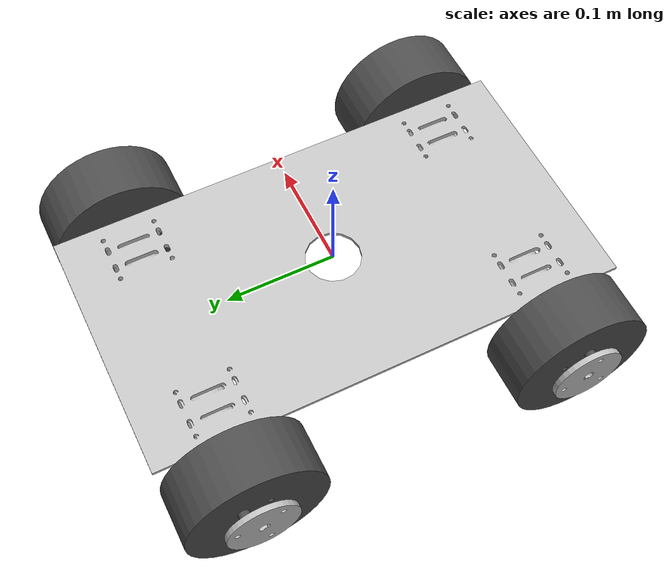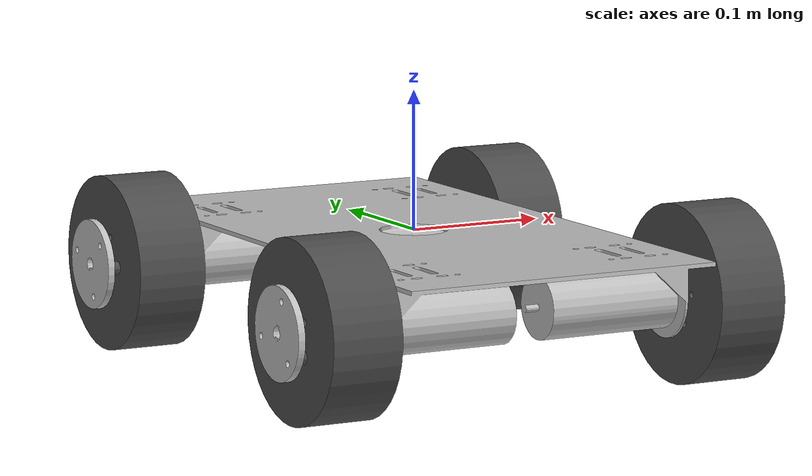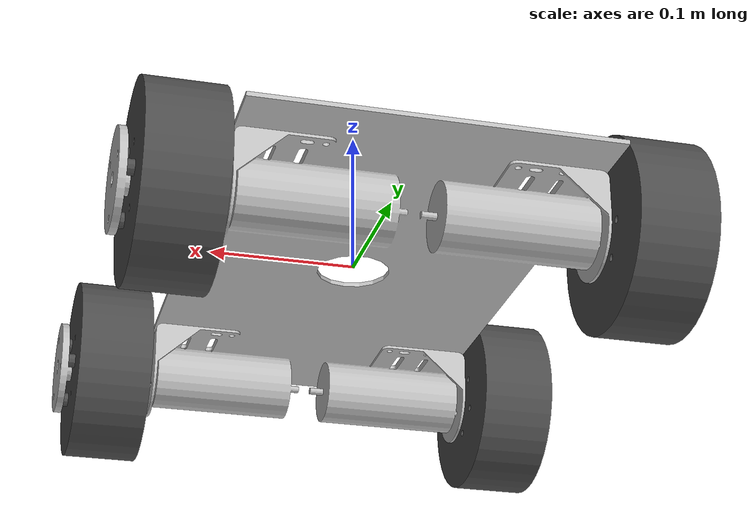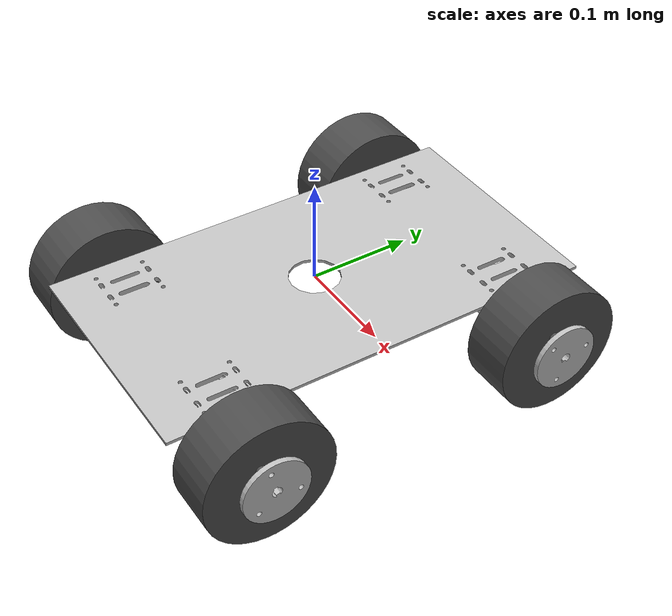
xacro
<?xml version="1.0" encoding="utf-8"?>
<robot name="msr" xmlns:xacro="http://ros.org/wiki/xacro">

  <xacro:include filename="$(find msr)/urdf/msr.gazebo.xacro"/>

  <link name="base_link">
    <inertial>
      <origin
        xyz="-8.73669186858481E-18 1.44637171351933E-06 -0.0237637406117088"
        rpy="0 0 0" />
      <mass
        value="1.09205855733332" />
      <inertia
        ixx="0.00476506432987394"
        ixy="5.02153093549206E-07"
        ixz="-6.45628599175951E-21"
        iyy="0.00207697842824223"
        iyz="2.75344355502338E-19"
        izz="0.00661717269474077" />
    </inertial>
    <visual>
      <origin
        xyz="0 0 0"
        rpy="0 0 0" />
      <geometry>
        <mesh
          filename="package://msr/meshes/base_link.STL" />
      </geometry>
      <material
        name="">
        <color
          rgba="0.752941176470588 0.752941176470588 0.752941176470588 1" />
      </material>
    </visual>
    <collision>
      <origin
        xyz="0 0 0"
        rpy="0 0 0" />
      <geometry>
        <mesh
          filename="package://msr/meshes/base_link.STL" />
      </geometry>
    </collision>
  </link>

  <link name="front_left">
    <inertial>
      <origin
        xyz="2.42861286636753E-17 2.77555756156289E-17 -0.0255525062351154"
        rpy="0 0 0" />
      <mass
        value="0.628243917892436" />
      <inertia
        ixx="0.000786474602916463"
        ixy="5.42101086242752E-20"
        ixz="2.164642910193E-19"
        iyy="0.000786474602916463"
        iyz="-1.79242202977043E-19"
        izz="0.00129926747138072" />
    </inertial>
    <visual>
      <origin
        xyz="0 0 0"
        rpy="0 0 0" />
      <geometry>
        <mesh
          filename="package://msr/meshes/front_left.STL" />
      </geometry>
      <material
        name="">
        <color
          rgba="0.298039215686275 0.298039215686275 0.298039215686275 1" />
      </material>
    </visual>
    <collision>
      <origin
        xyz="0 0 0"
        rpy="0 0 0" />
      <geometry>
        <mesh
          filename="package://msr/meshes/front_left.STL" />
      </geometry>
    </collision>
  </link>

  <joint name="front_left_joint"
    type="continuous">
    <origin
      xyz="0.1235 -0.150886832667511 -0.033"
      rpy="1.5707963267949 -1.17899991460539 -1.5707963267949" />
    <parent
      link="base_link" />
    <child
      link="front_left" />
    <axis
      xyz="0 0 1" />
  </joint>

  <link name="front_right">
    <inertial>
      <origin
        xyz="-5.55111512312578E-17 -4.16333634234434E-17 -0.0255525062351155"
        rpy="0 0 0" />
      <mass
        value="0.628243917892436" />
      <inertia
        ixx="0.000786474602916463"
        ixy="1.0842021724855E-19"
        ixz="2.72172913425544E-20"
        iyy="0.000786474602916463"
        iyz="1.1686798084033E-20"
        izz="0.00129926747138073" />
    </inertial>
    <visual>
      <origin
        xyz="0 0 0"
        rpy="0 0 0" />
      <geometry>
        <mesh
          filename="package://msr/meshes/front_right.STL" />
      </geometry>
      <material
        name="">
        <color
          rgba="0.298039215686275 0.298039215686275 0.298039215686275 1" />
      </material>
    </visual>
    <collision>
      <origin
        xyz="0 0 0"
        rpy="0 0 0" />
      <geometry>
        <mesh
          filename="package://msr/meshes/front_right.STL" />
      </geometry>
    </collision>
  </link>

  <joint name="front_right_joint"
    type="continuous">
    <origin
      xyz="-0.1235 -0.150886832667511 -0.033"
      rpy="-1.5707963267949 0.591943593015272 -1.5707963267949" />
    <parent
      link="base_link" />
    <child
      link="front_right" />
    <axis
      xyz="0 0 1" />
  </joint>

  <link name="back_left">
    <inertial>
      <origin
        xyz="-5.55111512312578E-17 -5.55111512312578E-17 -0.0255525062351154"
        rpy="0 0 0" />
      <mass
        value="0.628243917892436" />
      <inertia
        ixx="0.000786474602916463"
        ixy="5.42101086242752E-20"
        ixz="2.16447257019058E-19"
        iyy="0.000786474602916463"
        iyz="-1.79196690336017E-19"
        izz="0.00129926747138072" />
    </inertial>
    <visual>
      <origin
        xyz="0 0 0"
        rpy="0 0 0" />
      <geometry>
        <mesh
          filename="package://msr/meshes/back_left.STL" />
      </geometry>
      <material
        name="">
        <color
          rgba="0.298039215686275 0.298039215686275 0.298039215686275 1" />
      </material>
    </visual>
    <collision>
      <origin
        xyz="0 0 0"
        rpy="0 0 0" />
      <geometry>
        <mesh
          filename="package://msr/meshes/back_left.STL" />
      </geometry>
    </collision>
  </link>

  <joint name="back_left_joint"
    type="continuous">
    <origin
      xyz="0.1235 0.150886832667511 -0.033"
      rpy="1.5707963267949 -1.17899991460539 -1.5707963267949" />
    <parent
      link="base_link" />
    <child
      link="back_left" />
    <axis
      xyz="0 0 1" />
  </joint>

  <link name="back_right">
    <inertial>
      <origin
        xyz="-2.77555756156289E-17 -4.85722573273506E-17 -0.0255525062351155"
        rpy="0 0 0" />
      <mass
        value="0.628243917892436" />
      <inertia
        ixx="0.000786474602916463"
        ixy="-1.6978154312681E-20"
        ixz="2.40982361339356E-20"
        iyy="0.000786474602916463"
        iyz="-5.86290186749809E-20"
        izz="0.00129926747138072" />
    </inertial>
    <visual>
      <origin
        xyz="0 0 0"
        rpy="0 0 0" />
      <geometry>
        <mesh
          filename="package://msr/meshes/back_right.STL" />
      </geometry>
      <material
        name="">
        <color
          rgba="0.298039215686275 0.298039215686275 0.298039215686275 1" />
      </material>
    </visual>
    <collision>
      <origin
        xyz="0 0 0"
        rpy="0 0 0" />
      <geometry>
        <mesh
          filename="package://msr/meshes/back_right.STL" />
      </geometry>
    </collision>
  </link>

  <joint name="back_right_joint"
    type="continuous">
    <origin
      xyz="-0.1225 0.150886832667511 -0.033"
      rpy="-1.5707963267949 0 -1.5707963267949" />
    <parent
      link="base_link" />
    <child
      link="back_right" />
    <axis
      xyz="0 0 1" />
  </joint>

 <joint name="imu_joint" type="fixed">
    <parent link="base_link"/>
    <child link="imu_link"/>
    <origin xyz="-0.032 0 0.068" rpy="0 0 0"/>
  </joint>

  <link name="imu_link"/>

  <joint name="scan_joint" type="fixed">
    <parent link="base_link"/>
    <child link="base_scan"/>
    <origin xyz="-0.032 0 0.172" rpy="0 0 0"/>
  </joint>

  <link name="base_scan"/>

</robot>
